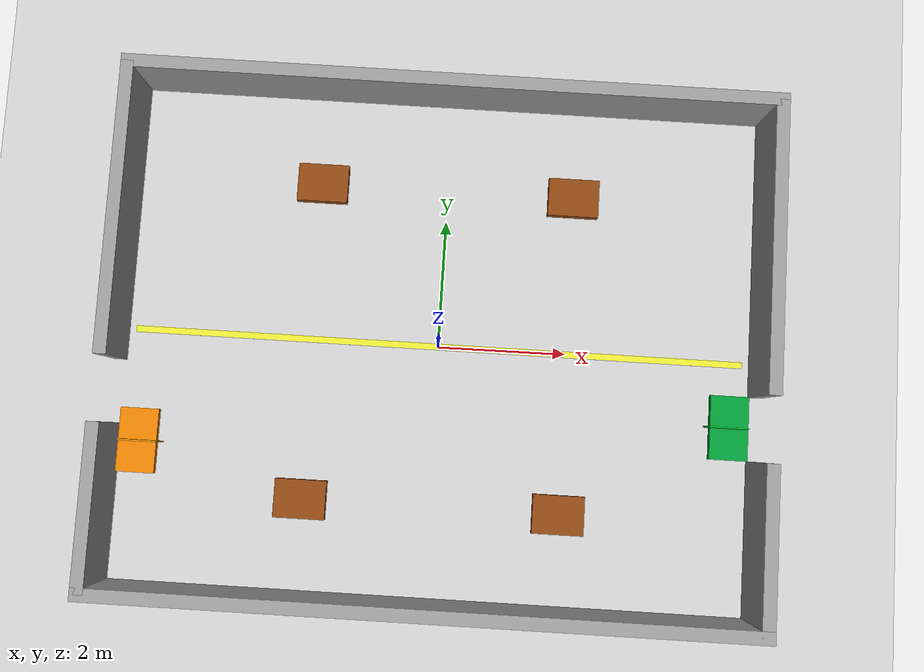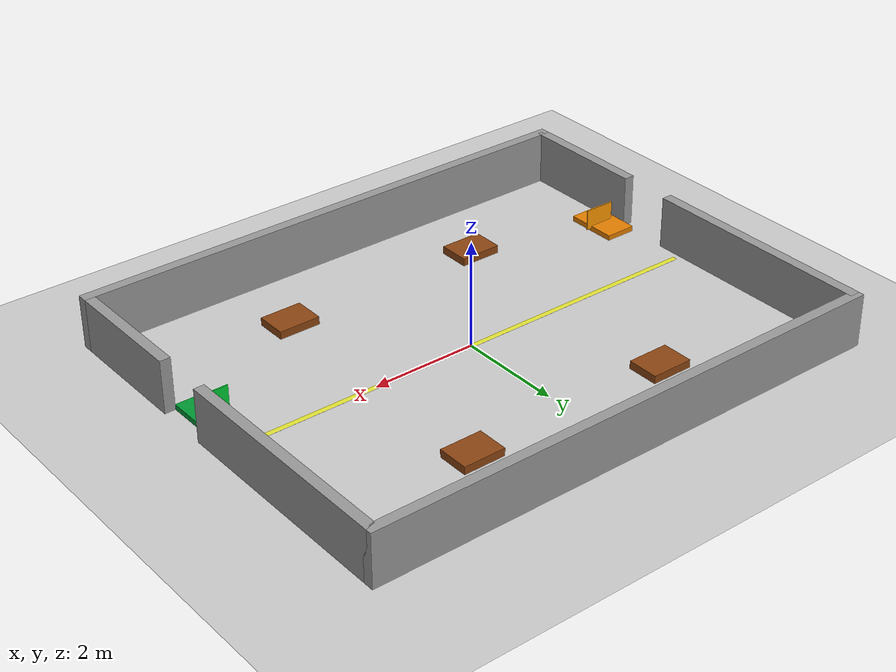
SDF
<?xml version="1.0"?>
<sdf version="1.8">
  <world name="galp_amr">

    <physics type="ode">
      <real_time_update_rate>1000.0</real_time_update_rate>
      <max_step_size>0.001</max_step_size>
      <real_time_factor>1</real_time_factor>
    </physics>

    <plugin filename="gz-sim-physics-system"        name="gz::sim::systems::Physics"/>
    <plugin filename="gz-sim-user-commands-system"  name="gz::sim::systems::UserCommands"/>
    <plugin filename="gz-sim-scene-broadcaster-system" name="gz::sim::systems::SceneBroadcaster"/>
    <plugin filename="gz-sim-sensors-system"        name="gz::sim::systems::Sensors">
      <render_engine>ogre2</render_engine>
    </plugin>
    <plugin filename="gz-sim-imu-system"            name="gz::sim::systems::Imu"/>

    <!-- Iluminação -->
    <light type="directional" name="sun">
      <cast_shadows>true</cast_shadows>
      <pose>0 0 10 0 0 0</pose>
      <diffuse>0.8 0.8 0.8 1</diffuse>
      <specular>0.2 0.2 0.2 1</specular>
      <direction>-0.5 0.1 -0.9</direction>
    </light>

    <!-- Piso -->
    <model name="ground_plane">
      <static>true</static>
      <link name="link">
        <collision name="collision">
          <geometry><plane><normal>0 0 1</normal><size>20 20</size></plane></geometry>
        </collision>
        <visual name="visual">
          <geometry><plane><normal>0 0 1</normal><size>20 20</size></plane></geometry>
          <material>
            <ambient>0.8 0.8 0.8 1</ambient>
            <diffuse>0.8 0.8 0.8 1</diffuse>
          </material>
        </visual>
      </link>
    </model>

    <!-- Parede Norte (y=+4) -->
    <model name="wall_norte">
      <static>true</static>
      <pose>0 4 0.5 0 0 0</pose>
      <link name="link">
        <collision name="col"><geometry><box><size>10.2 0.2 1.0</size></box></geometry></collision>
        <visual name="vis">
          <geometry><box><size>10.2 0.2 1.0</size></box></geometry>
          <material><ambient>0.6 0.6 0.6 1</ambient><diffuse>0.6 0.6 0.6 1</diffuse></material>
        </visual>
      </link>
    </model>

    <!-- Parede Sul (y=-4) -->
    <model name="wall_sul">
      <static>true</static>
      <pose>0 -4 0.5 0 0 0</pose>
      <link name="link">
        <collision name="col"><geometry><box><size>10.2 0.2 1.0</size></box></geometry></collision>
        <visual name="vis">
          <geometry><box><size>10.2 0.2 1.0</size></box></geometry>
          <material><ambient>0.6 0.6 0.6 1</ambient><diffuse>0.6 0.6 0.6 1</diffuse></material>
        </visual>
      </link>
    </model>

    <!-- Parede Oeste (x=-5) — com vão para a DOCA -->
    <model name="wall_oeste_norte">
      <static>true</static>
      <pose>-5 1.75 0.5 0 0 0</pose>
      <link name="link">
        <collision name="col"><geometry><box><size>0.2 4.5 1.0</size></box></geometry></collision>
        <visual name="vis">
          <geometry><box><size>0.2 4.5 1.0</size></box></geometry>
          <material><ambient>0.6 0.6 0.6 1</ambient><diffuse>0.6 0.6 0.6 1</diffuse></material>
        </visual>
      </link>
    </model>
    <model name="wall_oeste_sul">
      <static>true</static>
      <pose>-5 -2.75 0.5 0 0 0</pose>
      <link name="link">
        <collision name="col"><geometry><box><size>0.2 2.5 1.0</size></box></geometry></collision>
        <visual name="vis">
          <geometry><box><size>0.2 2.5 1.0</size></box></geometry>
          <material><ambient>0.6 0.6 0.6 1</ambient><diffuse>0.6 0.6 0.6 1</diffuse></material>
        </visual>
      </link>
    </model>

    <!-- Parede Leste (x=+5) — com vão para a EXPEDIÇÃO -->
    <model name="wall_leste_norte">
      <static>true</static>
      <pose>5 1.75 0.5 0 0 0</pose>
      <link name="link">
        <collision name="col"><geometry><box><size>0.2 4.5 1.0</size></box></geometry></collision>
        <visual name="vis">
          <geometry><box><size>0.2 4.5 1.0</size></box></geometry>
          <material><ambient>0.6 0.6 0.6 1</ambient><diffuse>0.6 0.6 0.6 1</diffuse></material>
        </visual>
      </link>
    </model>
    <model name="wall_leste_sul">
      <static>true</static>
      <pose>5 -2.75 0.5 0 0 0</pose>
      <link name="link">
        <collision name="col"><geometry><box><size>0.2 2.5 1.0</size></box></geometry></collision>
        <visual name="vis">
          <geometry><box><size>0.2 2.5 1.0</size></box></geometry>
          <material><ambient>0.6 0.6 0.6 1</ambient><diffuse>0.6 0.6 0.6 1</diffuse></material>
        </visual>
      </link>
    </model>

    <!-- ═══════════════════════════════════════════════
         DOCA  (lado oeste, y ∈ [-2, -1.5])
         ═══════════════════════════════════════════════ -->
    <!-- Plataforma da doca -->
    <model name="doca_plataforma">
      <static>true</static>
      <pose>-4.6 -1.75 0.05 0 0 0</pose>
      <link name="link">
        <collision name="col"><geometry><box><size>0.6 1.0 0.1</size></box></geometry></collision>
        <visual name="vis">
          <geometry><box><size>0.6 1.0 0.1</size></box></geometry>
          <material><ambient>0.9 0.5 0.0 1</ambient><diffuse>0.9 0.5 0.0 1</diffuse></material>
        </visual>
      </link>
    </model>
    <!-- Sinalização DOCA -->
    <model name="doca_sign">
      <static>true</static>
      <pose>-4.5 -1.75 0.25 0 0 1.5708</pose>
      <link name="link">
        <visual name="vis">
          <geometry><box><size>0.02 0.6 0.4</size></box></geometry>
          <material><ambient>1.0 0.6 0.0 1</ambient><diffuse>1.0 0.6 0.0 1</diffuse></material>
        </visual>
      </link>
    </model>

    <!-- ═══════════════════════════════════════════════
         EXPEDIÇÃO  (lado leste, y ∈ [-1.5, -0.5])
         ═══════════════════════════════════════════════ -->
    <model name="expedicao_plataforma">
      <static>true</static>
      <pose>4.6 -1.0 0.05 0 0 0</pose>
      <link name="link">
        <collision name="col"><geometry><box><size>0.6 1.0 0.1</size></box></geometry></collision>
        <visual name="vis">
          <geometry><box><size>0.6 1.0 0.1</size></box></geometry>
          <material><ambient>0.0 0.6 0.2 1</ambient><diffuse>0.0 0.6 0.2 1</diffuse></material>
        </visual>
      </link>
    </model>
    <model name="expedicao_sign">
      <static>true</static>
      <pose>4.5 -1.0 0.25 0 0 1.5708</pose>
      <link name="link">
        <visual name="vis">
          <geometry><box><size>0.02 0.6 0.4</size></box></geometry>
          <material><ambient>0.0 0.8 0.2 1</ambient><diffuse>0.0 0.8 0.2 1</diffuse></material>
        </visual>
      </link>
    </model>

    <!-- Pallet 1 — Norte-Oeste  (-2.0, 2.5) -->
    <model name="pallet_1">
      <static>true</static>
      <pose>-2.0 2.5 0.075 0 0 0</pose>
      <link name="link">
        <collision name="col"><geometry><box><size>0.8 0.6 0.15</size></box></geometry></collision>
        <visual name="vis">
          <geometry><box><size>0.8 0.6 0.15</size></box></geometry>
          <material><ambient>0.55 0.27 0.07 1</ambient><diffuse>0.55 0.27 0.07 1</diffuse></material>
        </visual>
      </link>
    </model>

    <!-- Pallet 2 — Sul-Oeste  (-2.0, -2.5) -->
    <model name="pallet_2">
      <static>true</static>
      <pose>-2.0 -2.5 0.075 0 0 0</pose>
      <link name="link">
        <collision name="col"><geometry><box><size>0.8 0.6 0.15</size></box></geometry></collision>
        <visual name="vis">
          <geometry><box><size>0.8 0.6 0.15</size></box></geometry>
          <material><ambient>0.55 0.27 0.07 1</ambient><diffuse>0.55 0.27 0.07 1</diffuse></material>
        </visual>
      </link>
    </model>

    <!-- Pallet 3 — Norte-Leste  (2.0, 2.5) -->
    <model name="pallet_3">
      <static>true</static>
      <pose>2.0 2.5 0.075 0 0 0</pose>
      <link name="link">
        <collision name="col"><geometry><box><size>0.8 0.6 0.15</size></box></geometry></collision>
        <visual name="vis">
          <geometry><box><size>0.8 0.6 0.15</size></box></geometry>
          <material><ambient>0.55 0.27 0.07 1</ambient><diffuse>0.55 0.27 0.07 1</diffuse></material>
        </visual>
      </link>
    </model>

    <!-- Pallet 4 — Sul-Leste  (2.0, -2.5) -->
    <model name="pallet_4">
      <static>true</static>
      <pose>2.0 -2.5 0.075 0 0 0</pose>
      <link name="link">
        <collision name="col"><geometry><box><size>0.8 0.6 0.15</size></box></geometry></collision>
        <visual name="vis">
          <geometry><box><size>0.8 0.6 0.15</size></box></geometry>
          <material><ambient>0.55 0.27 0.07 1</ambient><diffuse>0.55 0.27 0.07 1</diffuse></material>
        </visual>
      </link>
    </model>

    <!-- Marcações no piso (linhas de corredor) -->
    <model name="linha_corredor_central">
      <static>true</static>
      <pose>0 0 0.001 0 0 0</pose>
      <link name="link">
        <visual name="vis">
          <geometry><box><size>9.6 0.1 0.001</size></box></geometry>
          <material><ambient>0.9 0.9 0.2 1</ambient><diffuse>0.9 0.9 0.2 1</diffuse></material>
        </visual>
      </link>
    </model>

  </world>
</sdf>
